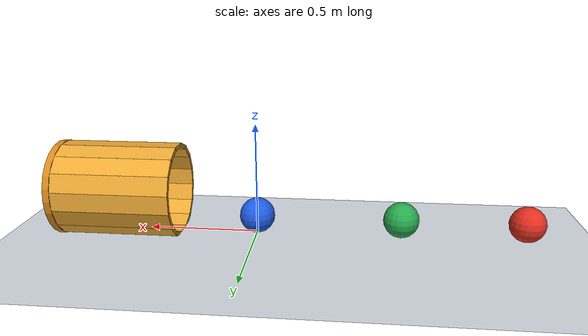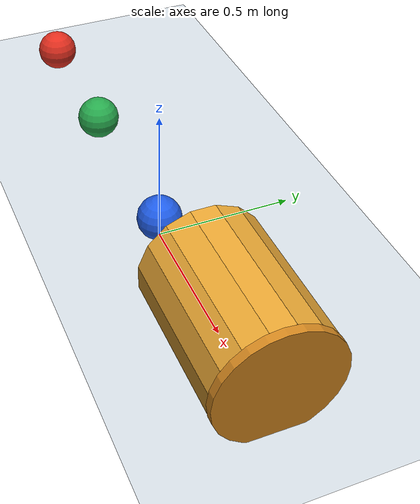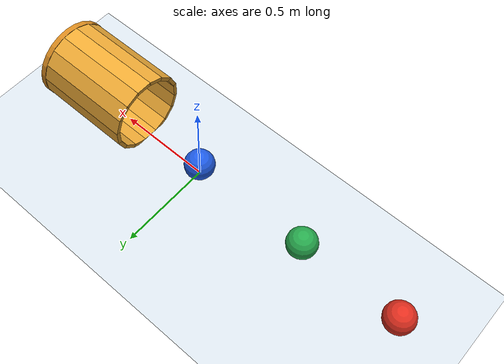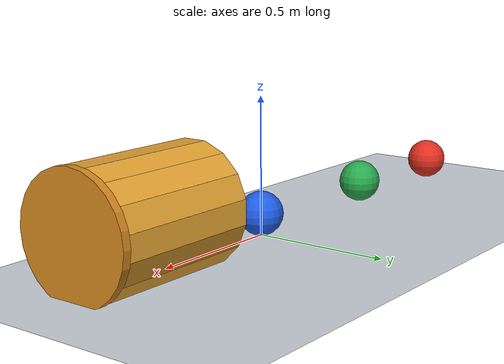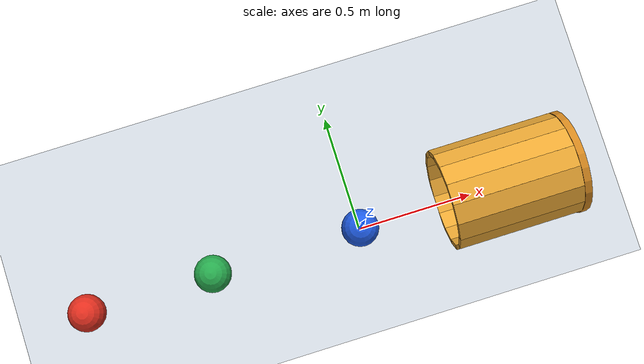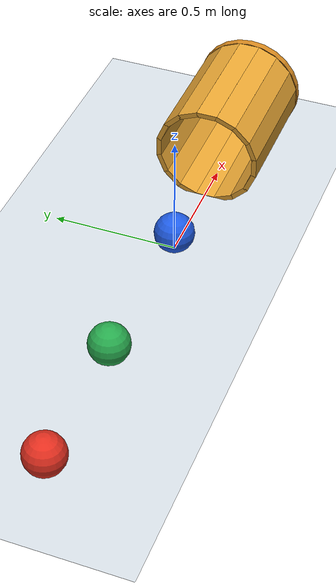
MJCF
<mujoco model="three_balls_into_cup">
  <compiler angle="degree"/>
  <option timestep="0.002" gravity="0 0 -9.81" integrator="implicitfast" solver="Newton" iterations="80" cone="elliptic"/>

  <visual>
    <headlight ambient="0.35 0.35 0.35" diffuse="0.65 0.65 0.65" specular="0.2 0.2 0.2"/>
    <rgba haze="0.9 0.93 0.96 1"/>
  </visual>

  <worldbody>
    <light name="key_light" pos="-1 -2 4" dir="0.2 0.3 -1" diffuse="0.8 0.8 0.8" castshadow="true"/>
    <camera name="overview" pos="-2.5 -3 2" xyaxes="0.8 -0.6 0 0.271 0.362 0.892" fovy="42"/>

    <geom name="floor" type="plane" pos="0 0 0" size="5 3 0.1" rgba="0.83 0.86 0.89 1" condim="6" priority="1" friction="0.65 0.002 0.003" solref="0.008 1" solimp="0.99 0.99 0.001"/>

    <body name="ball1" pos="-1.2 0 0.08">
      <freejoint name="ball1_free"/>
      <geom name="ball1_sphere" type="sphere" size="0.08" mass="0.12" rgba="0.88 0.18 0.12 1" condim="1" solref="-40000 -12" solimp="0.99 0.99 0.001"/>
    </body>

    <body name="ball2" pos="-0.65 0 0.08">
      <freejoint name="ball2_free"/>
      <geom name="ball2_sphere" type="sphere" size="0.08" mass="0.12" rgba="0.15 0.66 0.30 1" condim="1" solref="-40000 -12" solimp="0.99 0.99 0.001"/>
    </body>

    <body name="ball3" pos="0 0 0.08">
      <freejoint name="ball3_free"/>
      <geom name="ball3_sphere" type="sphere" size="0.08" mass="0.12" rgba="0.12 0.36 0.90 1" condim="1" solref="-40000 -12" solimp="0.99 0.99 0.001"/>
    </body>

    <!-- Static hollow cup: axis along x, open at x=0.35.
         Sixteen overlapping panels form the sleeve.
         Its lowest inside surface is flush with the floor. -->
    <body name="cup" pos="0.61 0 0.19">
      <geom name="cup_wall_00" type="box" pos="0 0 0.2" quat="1 0 0 0" size="0.26 0.042 0.01" rgba="0.91 0.65 0.20 1" priority="2" condim="6" friction="0.8 0.002 0.003" solref="0.008 1"/>
      <geom name="cup_wall_01" type="box" pos="0 -0.076537 0.184776" quat="0.980785 0.195090 0 0" size="0.26 0.042 0.01" rgba="0.91 0.65 0.20 1" priority="2" condim="6" friction="0.8 0.002 0.003" solref="0.008 1"/>
      <geom name="cup_wall_02" type="box" pos="0 -0.141421 0.141421" quat="0.923880 0.382683 0 0" size="0.26 0.042 0.01" rgba="0.91 0.65 0.20 1" priority="2" condim="6" friction="0.8 0.002 0.003" solref="0.008 1"/>
      <geom name="cup_wall_03" type="box" pos="0 -0.184776 0.076537" quat="0.831470 0.555570 0 0" size="0.26 0.042 0.01" rgba="0.91 0.65 0.20 1" priority="2" condim="6" friction="0.8 0.002 0.003" solref="0.008 1"/>
      <geom name="cup_wall_04" type="box" pos="0 -0.2 0" quat="0.707107 0.707107 0 0" size="0.26 0.042 0.01" rgba="0.91 0.65 0.20 1" priority="2" condim="6" friction="0.8 0.002 0.003" solref="0.008 1"/>
      <geom name="cup_wall_05" type="box" pos="0 -0.184776 -0.076537" quat="0.555570 0.831470 0 0" size="0.26 0.042 0.01" rgba="0.91 0.65 0.20 1" priority="2" condim="6" friction="0.8 0.002 0.003" solref="0.008 1"/>
      <geom name="cup_wall_06" type="box" pos="0 -0.141421 -0.141421" quat="0.382683 0.923880 0 0" size="0.26 0.042 0.01" rgba="0.91 0.65 0.20 1" priority="2" condim="6" friction="0.8 0.002 0.003" solref="0.008 1"/>
      <geom name="cup_wall_07" type="box" pos="0 -0.076537 -0.184776" quat="0.195090 0.980785 0 0" size="0.26 0.042 0.01" rgba="0.91 0.65 0.20 1" priority="2" condim="6" friction="0.8 0.002 0.003" solref="0.008 1"/>
      <geom name="cup_wall_08" type="box" pos="0 0 -0.2" quat="0 1 0 0" size="0.26 0.042 0.01" rgba="0.91 0.65 0.20 1" priority="2" condim="6" friction="0.8 0.002 0.003" solref="0.008 1"/>
      <geom name="cup_wall_09" type="box" pos="0 0.076537 -0.184776" quat="-0.195090 0.980785 0 0" size="0.26 0.042 0.01" rgba="0.91 0.65 0.20 1" priority="2" condim="6" friction="0.8 0.002 0.003" solref="0.008 1"/>
      <geom name="cup_wall_10" type="box" pos="0 0.141421 -0.141421" quat="-0.382683 0.923880 0 0" size="0.26 0.042 0.01" rgba="0.91 0.65 0.20 1" priority="2" condim="6" friction="0.8 0.002 0.003" solref="0.008 1"/>
      <geom name="cup_wall_11" type="box" pos="0 0.184776 -0.076537" quat="-0.555570 0.831470 0 0" size="0.26 0.042 0.01" rgba="0.91 0.65 0.20 1" priority="2" condim="6" friction="0.8 0.002 0.003" solref="0.008 1"/>
      <geom name="cup_wall_12" type="box" pos="0 0.2 0" quat="-0.707107 0.707107 0 0" size="0.26 0.042 0.01" rgba="0.91 0.65 0.20 1" priority="2" condim="6" friction="0.8 0.002 0.003" solref="0.008 1"/>
      <geom name="cup_wall_13" type="box" pos="0 0.184776 0.076537" quat="-0.831470 0.555570 0 0" size="0.26 0.042 0.01" rgba="0.91 0.65 0.20 1" priority="2" condim="6" friction="0.8 0.002 0.003" solref="0.008 1"/>
      <geom name="cup_wall_14" type="box" pos="0 0.141421 0.141421" quat="-0.923880 0.382683 0 0" size="0.26 0.042 0.01" rgba="0.91 0.65 0.20 1" priority="2" condim="6" friction="0.8 0.002 0.003" solref="0.008 1"/>
      <geom name="cup_wall_15" type="box" pos="0 0.076537 0.184776" quat="-0.980785 0.195090 0 0" size="0.26 0.042 0.01" rgba="0.91 0.65 0.20 1" priority="2" condim="6" friction="0.8 0.002 0.003" solref="0.008 1"/>
      <geom name="cup_closed_end" type="cylinder" pos="0.275 0 0" quat="0.707107 0 0.707107 0" size="0.215 0.015" rgba="0.83 0.53 0.12 1" priority="2" condim="6" friction="0.8 0.002 0.003" solref="0.008 1"/>
    </body>
  </worldbody>

  <keyframe>
    <key name="start" qpos="-1.2 0 0.08 1 0 0 0 -0.65 0 0.08 1 0 0 0 0 0 0.08 1 0 0 0" qvel="1.8 0 0 0 22.5 0 0 0 0 0 0 0 0 0 0 0 0 0"/>
  </keyframe>
</mujoco>
